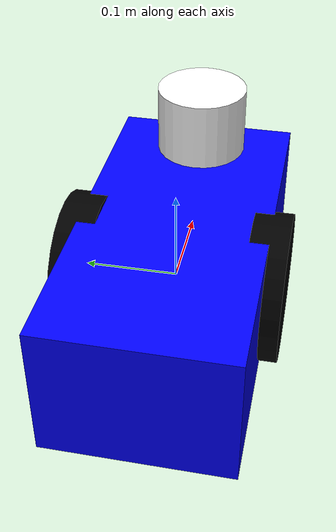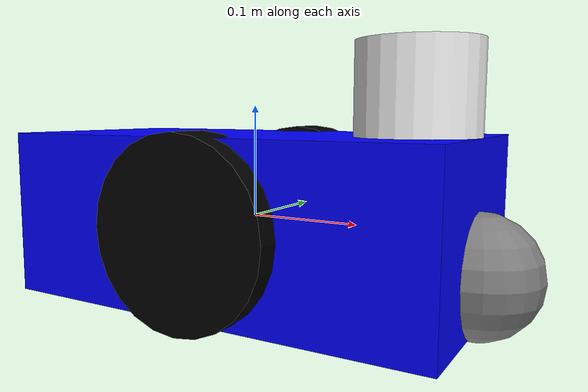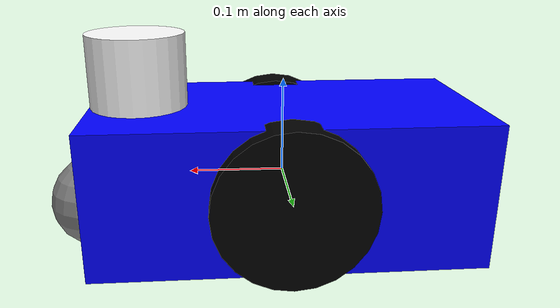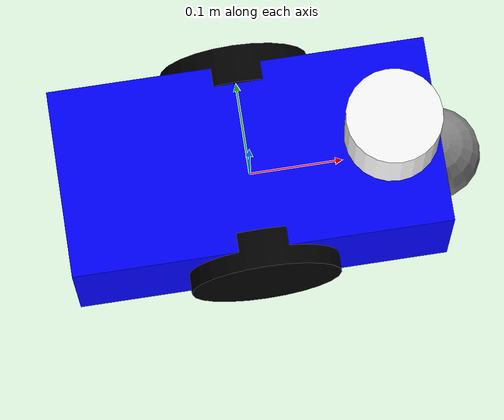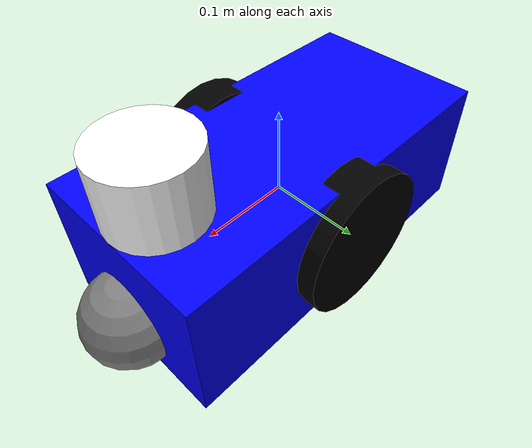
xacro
<?xml version="1.0"?>
<robot xmlns:xacro="http://wiki.ros.org/xacro" name="simple_robot">

    <!-- 全局材质 -->
    <material name="black">
        <color rgba="0 0 0 1"/>
    </material>
    <material name="blue">
        <color rgba="0 0 1 1"/>
    </material>
    <material name="gray">
        <color rgba="0.5 0.5 0.5 1"/>
    </material>
    <material name="white">
        <color rgba="1 1 1 1"/>
    </material>

    <!-- 参数 -->
    <xacro:property name="base_length" value="0.4" />
    <xacro:property name="base_width" value="0.2" />
    <xacro:property name="base_height" value="0.15" />
    <xacro:property name="base_mass" value="5" />

    <xacro:property name="wheel_radius" value="0.08" />
    <xacro:property name="wheel_length" value="0.04" />
    <xacro:property name="wheel_mass" value="1" />

    <xacro:property name="caster_radius" value="0.05" />
    <xacro:property name="caster_mass" value="0.5" />

    <xacro:property name="wheel_sep" value="0.2" />
    <xacro:property name="wheel_diam" value="0.16" />

    <!-- 轮子宏：圆柱体旋转使轴线水平，绕 Y 轴旋转驱动 -->
    <xacro:macro name="wheel" params="prefix reflect">
        <link name="${prefix}_link">
            <visual>
                <geometry>
                    <cylinder radius="${wheel_radius}" length="${wheel_length}" />
                </geometry>
                <material name="black"/>
                <!-- 将圆柱体从默认 Z 轴方向旋转到 Y 轴方向：绕 X 轴旋转 90° -->
                <origin rpy="1.5708 0 0"/>
            </visual>
            <collision>
                <geometry>
                    <cylinder radius="${wheel_radius}" length="${wheel_length}" />
                </geometry>
                <origin rpy="1.5708 0 0"/>
                <surface>
                    <friction>
                        <ode>
                            <mu>100</mu>
                            <mu2>100</mu2>
                        </ode>
                    </friction>
                </surface>
            </collision>
            <inertial>
                <mass value="${wheel_mass}"/>
                <inertia ixx="0.01" ixy="0" ixz="0" iyy="0.01" iyz="0" izz="0.01"/>
            </inertial>
        </link>

        <joint name="${prefix}_joint" type="continuous">
            <parent link="base_link"/>
            <child link="${prefix}_link"/>
            <!-- 轮子安装在底盘两侧，中心与底盘中心同高 -->
            <origin xyz="0 ${reflect * (base_width/2)} 0" rpy="0 0 0"/>
            <axis xyz="0 1 0"/>   <!-- 绕水平 Y 轴旋转，实现滚动 -->
        </joint>
    </xacro:macro>

    <!-- 调用轮子宏 -->
    <xacro:wheel prefix="wheel_left" reflect="1"/>
    <xacro:wheel prefix="wheel_right" reflect="-1"/>

    <!-- 激光雷达 -->
    <xacro:macro name="laser" params="prefix">
        <link name="${prefix}_link">
            <visual>
                <geometry>
                    <cylinder radius="0.05" length="0.15"/>
                </geometry>
                <material name="white"/>
            </visual>
            <collision>
                <geometry>
                    <cylinder radius="0.05" length="0.15"/>
                </geometry>
            </collision>
        </link>
    </xacro:macro>

    <xacro:laser prefix="laser"/>
    <joint name="laser_joint" type="fixed">
        <parent link="base_link"/>
        <child link="laser_link"/>
        <origin xyz="0.15 0 0.075"/>
    </joint>

    <!-- 底盘 -->
    <link name="base_link">
        <visual>
            <geometry>
                <box size="${base_length} ${base_width} ${base_height}"/>
            </geometry>
            <material name="blue"/>
        </visual>
        <collision>
            <geometry>
                <box size="${base_length} ${base_width} ${base_height}"/>
            </geometry>
        </collision>
        <inertial>
            <mass value="${base_mass}"/>
            <inertia ixx="0.1" ixy="0" ixz="0" iyy="0.1" iyz="0" izz="0.1"/>
        </inertial>
    </link>

    <!-- 万向轮：球体下缘接触地面，稳定支撑车体 -->
    <link name="caster_link">
        <visual>
            <geometry>
                <sphere radius="${caster_radius}"/>
            </geometry>
            <material name="gray"/>
        </visual>
        <collision>
            <geometry>
                <sphere radius="${caster_radius}"/>
            </geometry>
        </collision>
    </link>
    <joint name="caster_joint" type="fixed">
        <parent link="base_link"/>
        <child link="caster_link"/>
        <!-- 计算使球体下缘刚好接触地面的偏移：
             整体抬升后 base_link 中心 Z = wheel_radius，
             球心世界 Z = caster_radius 时下缘触地，
             因此相对 base_link 的 Z 偏移 = caster_radius - wheel_radius = -0.03 -->
        <origin xyz="0.2 0 -0.03"/>
    </joint>

    <!-- 差速驱动插件 -->
    <gazebo>
        <plugin name="diff_drive" filename="libgazebo_ros_diff_drive.so">
            <updateRate>50</updateRate>
            <leftJoint>wheel_left_joint</leftJoint>
            <rightJoint>wheel_right_joint</rightJoint>
            <wheelSeparation>${wheel_sep}</wheelSeparation>
            <wheelDiameter>${wheel_diam}</wheelDiameter>
            <wheelTorque>20</wheelTorque>
            <wheelAcceleration>5</wheelAcceleration>
            <commandTopic>/cmd_vel</commandTopic>
            <odometryTopic>/odom</odometryTopic>
            <odometryFrame>odom</odometryFrame>
            <robotBaseFrame>base_link</robotBaseFrame>
        </plugin>
    </gazebo>

    <!-- 全局位姿：将底盘抬高，使轮子下缘刚好接触地面 -->
    <gazebo>
        <pose>0 0 ${wheel_radius} 0 0 0</pose>
    </gazebo>

</robot>
